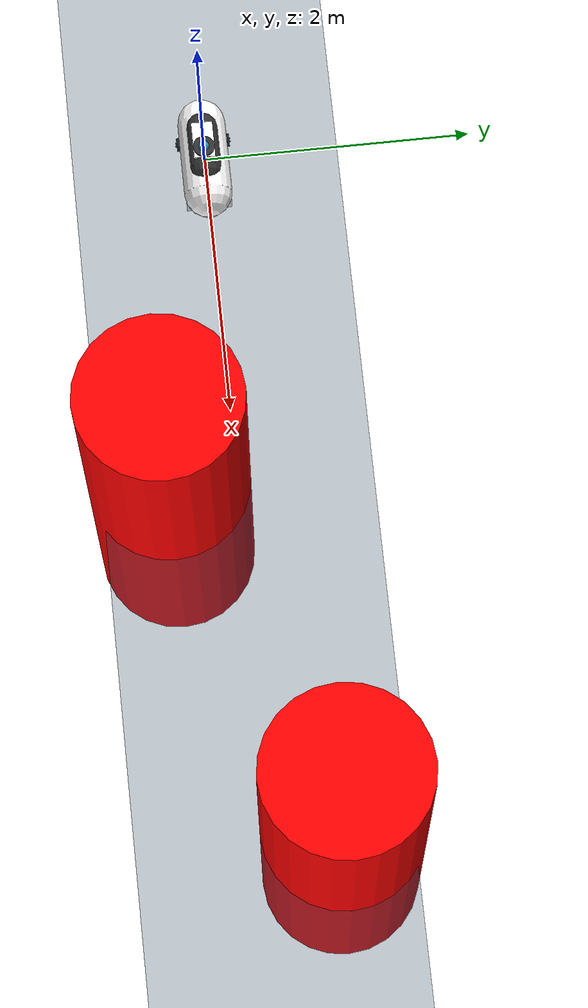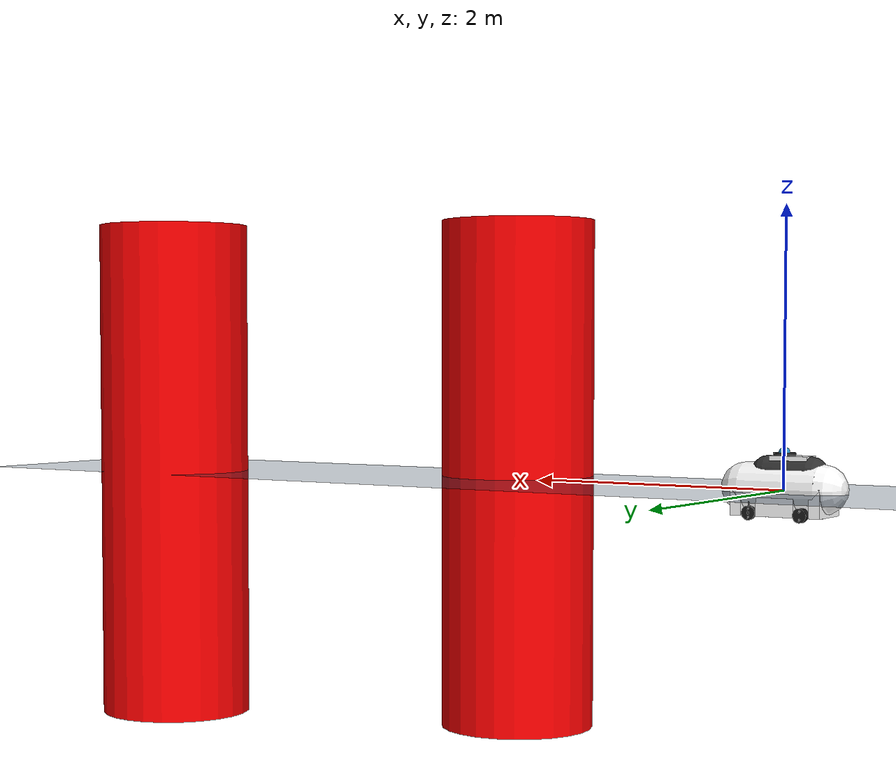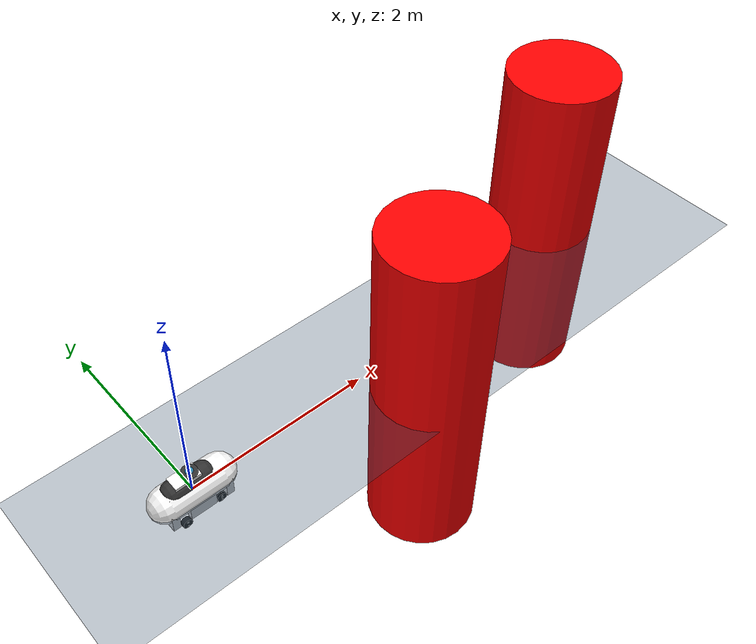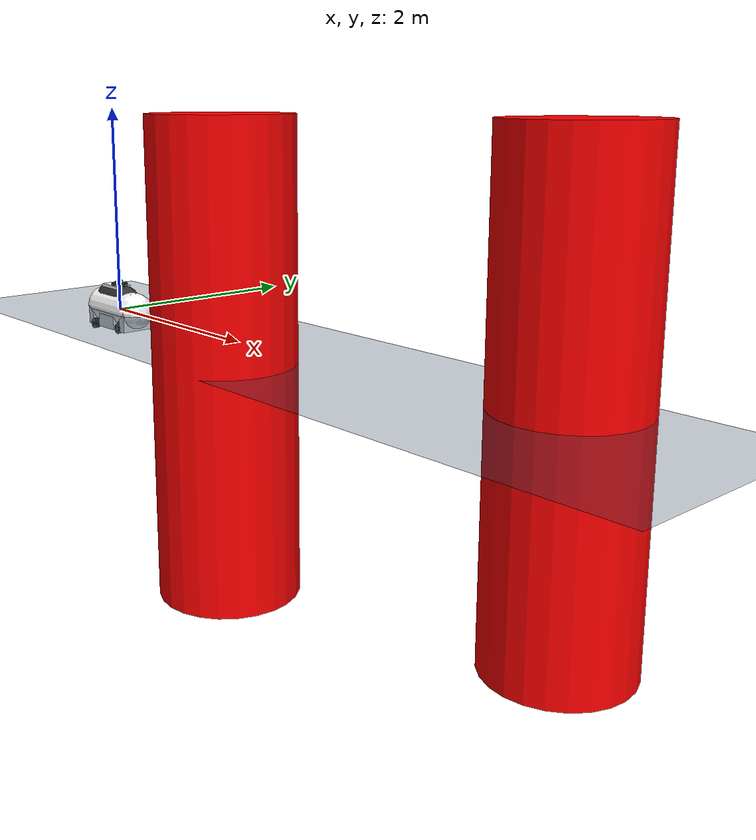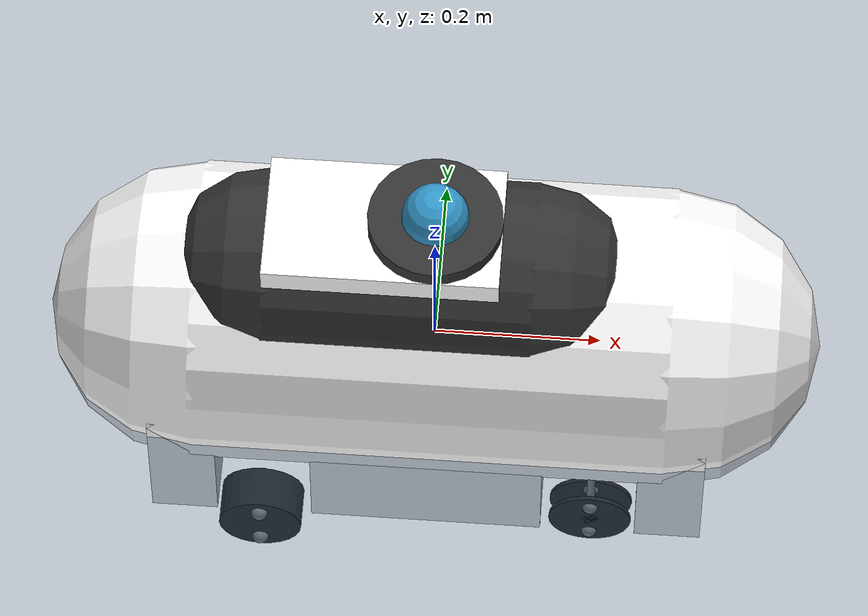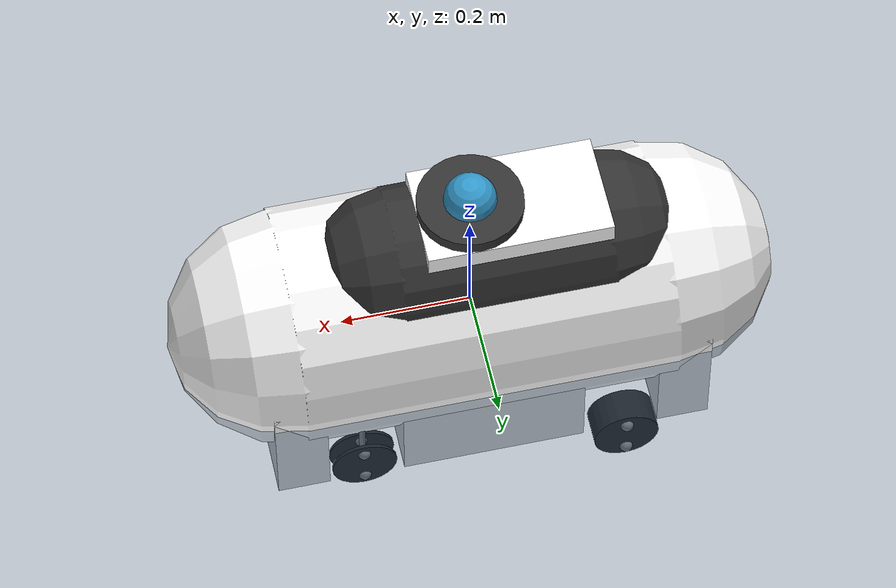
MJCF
<!--
Toy waymo car model with differential steering modified from
https://github.com/griloHBG/Rover4We
-->

<mujoco model="car">

    <compiler inertiafromgeom="true" angle="degree"/>
	<option integrator="Euler" timestep="0.025" gravity="0 0 -9.81"/>

	<asset>
		<texture name="grid" type="2d" builtin="checker" width="512" height="512" rgb1=".1 .2 .3" rgb2=".2 .3 .4"/>
    	<material name="grid" texture="grid" texrepeat="1 1" texuniform="true" reflectance=".2"/>
		<material name="MatWheel" specular="1" rgba=".1 .1 .1 1"/>
		<material name="MatBody" specular="1" rgba="1. 1. 1. 1"/>
	</asset>

	<default>
		<!--making every geom collidable. expect those that dont are default-->
		<geom contype="1" conaffinity="1"/>
	</default>

	<default class="acker_solver_param">
		<!--solver impedance and reference(?) for ackerman equality constraint-->
		<!--default solimp: "0.900 0.950 0.001"-->
		<!--default solref: "0.020 1.000"-->
		<!--solref: (timeconst, dampratio)
			b = 2 / (dmax * timeconst)
			k = d(r) / (dmax * dmax * timeconst * timeconst * dampratio * dampratio)
		-->
		<equality solimp="0.9950 0.9990 0.0001" solref="0.0100 0.7500"/> <!-- needs timestep="0.025" -->
	</default>

	<visual>
		<headlight active="1"/>
		<scale camera=".5"/>
		<map znear="0.001" zfar="1000"/>
	</visual>

    <worldbody>
		<geom type="plane" size="30 1 .01" material="grid"/>

		<geom name="obstacle_1" type="cylinder" pos="2.5 -0.5 0" size="0.6 2" mass="0" contype="0" conaffinity="0" rgba="1 0 0 1"/>
		<geom name="obstacle_2" type="cylinder" pos="5.2  0.5 0" size="0.6 2" mass="0" contype="0" conaffinity="0" rgba="1 0 0 1"/>

		<body name="car" pos="0 0 0">
			<camera name="birdview" mode="trackcom" pos="0 0 3" euler="0 0 0"/>
			<camera name="track" mode="trackcom" pos="-0.3 -2. 0.4" euler="90 -10 0"/>
			<camera name="follow" mode="trackcom" pos="-2 0 0.5" euler="90 -90 0"/>

			<light name="lamp" active="true" directional="true" cutoff="4" exponent="20" diffuse="1 1 1" specular="0 0 0" pos="0 0 2.5" dir="0 0 -1 "/>

			<joint name="centroid" type="free" pos="0 0 0"/>

			<!-- Main chassis and boxes around the wheels -->
			<geom name="chassis" type="capsule" fromto="-0.285 0 0.02 0.285 0 0.02" size="0.18" mass="15" material="MatBody"/>
			<geom type="box" pos="0 0 -0.07" size="0.14 0.17 0.1" material="MatBody"/>
			<geom type="box" pos="0.295 0 -0.07" size="0.04 0.17 0.1" material="MatBody"/>
			<geom type="box" pos="-0.295 0 -0.07" size="0.04 0.17 0.1" material="MatBody"/>

			<!-- Roof -->
			<geom type="capsule" fromto="-0.2 0 0.13 0.12 0 0.13" size="0.12" rgba=".2 .2 .2 1"/>
			<geom type="box" pos="-0.06 0 0.23" size="0.14 0.08 0.02" material="MatBody"/>

			<!-- LiDAR Dome -->
			<geom type="cylinder" fromto="0 0 0.2 0 0 0.27" size="0.08" rgba=".2 .2 .2 1"/>
			<geom type="sphere" pos="0 0 0.27" size="0.04" rgba="0.2 0.6 0.8 1"/>

			<site type="box" size=".01 .07 .07" pos=".2 0 0"/>
            <body name="r-l-wheel" pos="-0.2 0.15 -0.15">
                <joint name="r-l-drive-hinge" type="hinge" pos="0 0 0" axis="0 1 0" damping="0.01" />
                <geom type="cylinder" size=".05" fromto="0 0 0 0 0.05 0" mass=".125" material="MatWheel" condim="4"/>
				<site size=".01" pos="0 .05 .03"/>
				<site size=".01" pos="0 .05 -.03"/>
				<site size=".01" pos="0 0 .03"/>
				<site size=".01" pos="0 0 -.03"/>
            </body>
            <body name="r-r-wheel" pos="-0.2 -0.15 -0.15">
                <joint name="r-r-drive-hinge" type="hinge" pos="0 0 0" axis="0 1 0" damping="0.01"/>
                <geom type="cylinder" size=".05" fromto="0 0 0 0 -0.05 0" mass=".125" material="MatWheel" condim="4"/>
				<site size=".01" pos="0 -.05 .03"/>
				<site size=".01" pos="0 -.05 -.03"/>
				<site size=".01" pos="0 0 .03"/>
				<site size=".01" pos="0 0 -.03"/>
            </body>
			<body name="ghost-steer-wheel" pos="0 0 .2">
                <joint name="ghost-steer-hinge" type="hinge" pos="0 0 0" axis="0 0 1" limited="true" range="-17 17" damping="0"/>
				<geom type="cylinder" size=".05 .01" axisangle="1 0 0 90" contype="2" conaffinity="2" mass="0.002"/>
			</body>
			<body name="f-l-wheel" pos=".2 0.15 -.15">
				<geom type="capsule" size = ".005" fromto="0 0 0 0 0 .08" contype="2" conaffinity="2"/>
				<joint name="f-l-steer-hinge" type="hinge" pos="0 0 0" axis="0 0 1" damping="0.01" limited="true" range="-40 40"/>
				<body>
					<geom type="cylinder" size=".01" fromto="0 -.015 0 0 0.015 0" mass=".125" material="MatWheel"/>
					<body>
						<joint name="f-l-drive-hinge-1" type="hinge" pos="0 0 0" axis="0 1 0" damping="0.01"/>
						<geom type="cylinder" size=".05" fromto="0 -.015 0 0 -0.010 0" mass=".125" material="MatWheel" condim="4"/>
						<site size=".01" pos="0 -0.0125  0.03"/>
						<site size=".01" pos="0 -0.0125 -0.03"/>
					</body>
					<body>
						<joint name="f-l-drive-hinge-2" type="hinge" pos="0 0 0" axis="0 1 0" damping="0.01"/>
						<geom type="cylinder" size=".05" fromto="0 .010 0 0 0.015 0" mass=".125" material="MatWheel" condim="4"/>
						<site size=".01" pos="0  0.0125  0.03"/>
						<site size=".01" pos="0  0.0125 -0.03"/>
					</body>
				</body>
			</body>
			<body name="f-r-wheel" pos=".2 -0.15 -.15">
				<geom type="capsule" size = ".005" fromto="0 0 0 0 0 .08" contype="2" conaffinity="2"/>
				<joint name="f-r-steer-hinge" type="hinge" pos="0 0 0" axis="0 0 1" damping="0.01" limited="true" range="-40 40"/>

				<body>
					<geom type="cylinder" size=".01" fromto="0 -.015 0 0 0.015 0" mass=".125" material="MatWheel"/>
					<body>
						<joint name="f-l-drive-hinge-3" type="hinge" pos="0 0 0" axis="0 1 0" damping="0.01"/>
						<geom type="cylinder" size=".05" fromto="0 -.015 0 0 -0.010 0" mass=".125" material="MatWheel" condim="4"/>
						<site size=".01" pos="0 -0.0125  0.03"/>
						<site size=".01" pos="0 -0.0125 -0.03"/>
					</body>
					<body>
						<joint name="f-l-drive-hinge-4" type="hinge" pos="0 0 0" axis="0 1 0" damping="0.01"/>
						<geom type="cylinder" size=".05" fromto="0 .010 0 0 0.015 0" mass=".125" material="MatWheel" condim="4"/>
						<site size=".01" pos="0  0.0125  0.03"/>
						<site size=".01" pos="0  0.0125 -0.03"/>
					</body>
				</body>
			</body>

        </body>
    </worldbody>

	<tendon>
		<fixed name="rear-differential">
			<joint joint="r-l-drive-hinge" coef="1"/>
			<joint joint="r-r-drive-hinge" coef="1"/>
		</fixed>
	</tendon>

    <actuator>
        <position name="ghost-steer" joint="ghost-steer-hinge" ctrllimited="true" ctrlrange="-.29 .29" gear="1"/>
        <motor name="drive" tendon="rear-differential" ctrllimited="true" ctrlrange="-1.0 1.0" gear="1.5"/>
    </actuator>
	<!--
		joint1: y
		joint2: x
		polycoef: a0 a1 a2 a3 a4
		y-y0 = a0 + a1*(x-x0) + a2*(x-x0)^2 + a3*(x-x0)^3 + a4*(x-x0)^4
	-->
	<equality>
		<joint name="f-l-steer-hinge" joint1="f-l-steer-hinge" joint2="ghost-steer-hinge" polycoef="0.000093610018132620019 2.0041497325730204 1.4716131190668178 -1.0929725380842041 -3.2252012765547819" class="acker_solver_param"/>
		<joint name="f-r-steer-hinge" joint1="f-r-steer-hinge" joint2="ghost-steer-hinge" polycoef="-0.00017013070152971507 2.0039379507086514 -1.4684576386267671 -1.0901354124362155 3.1974185558159771" class="acker_solver_param"/>
	</equality>

</mujoco>
